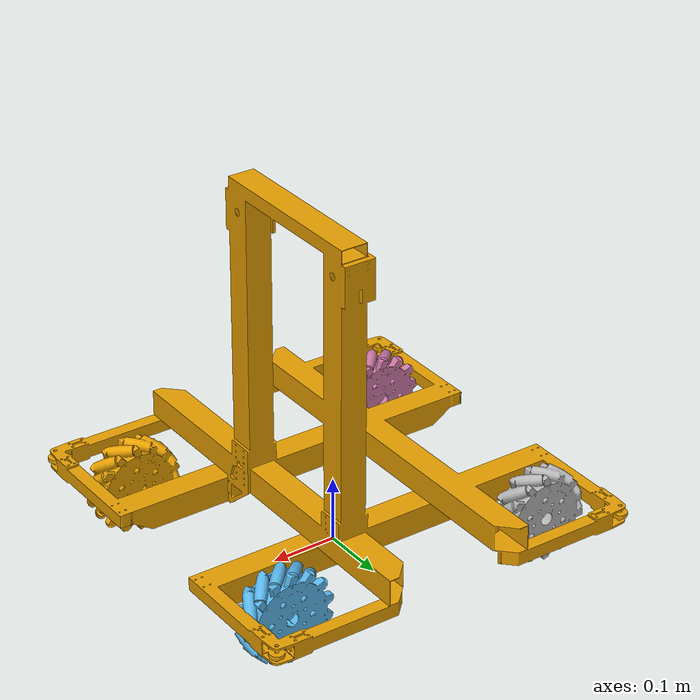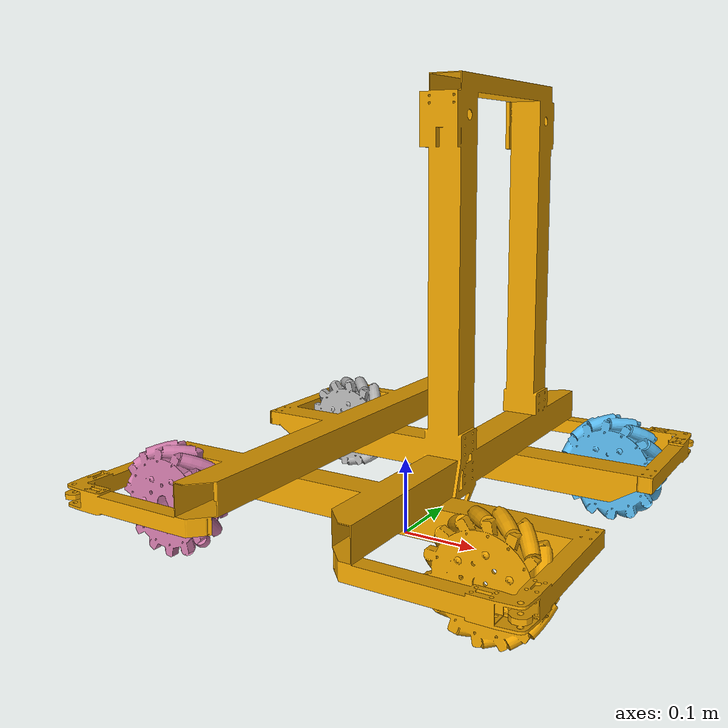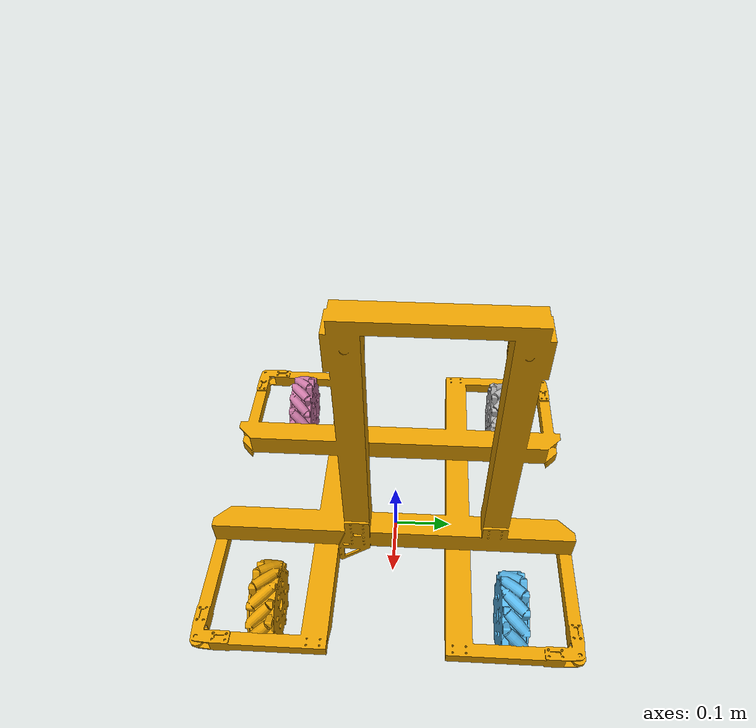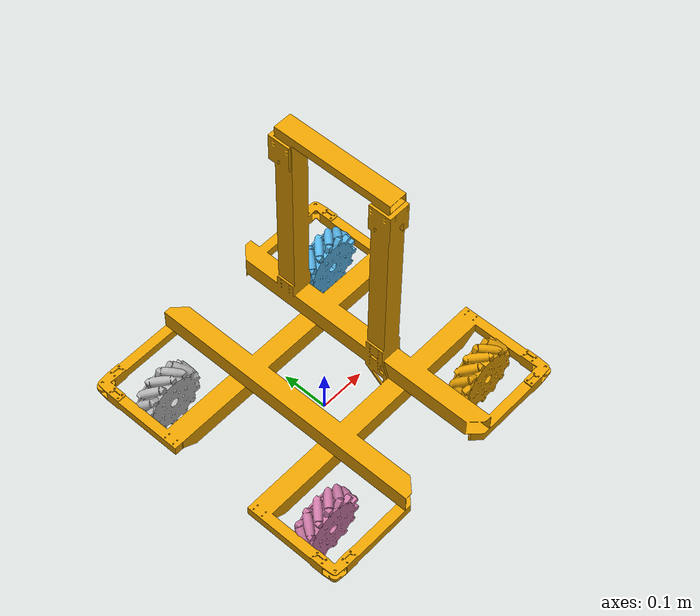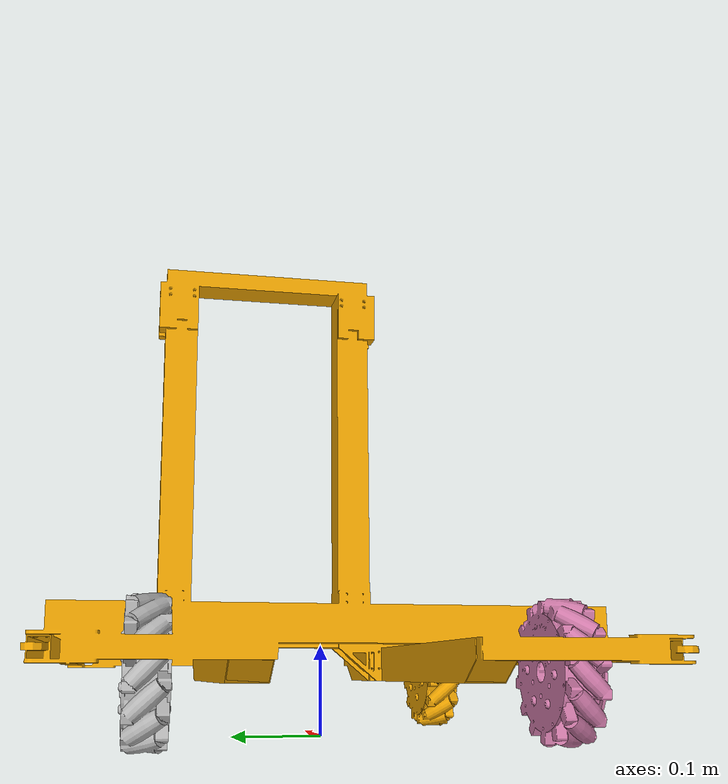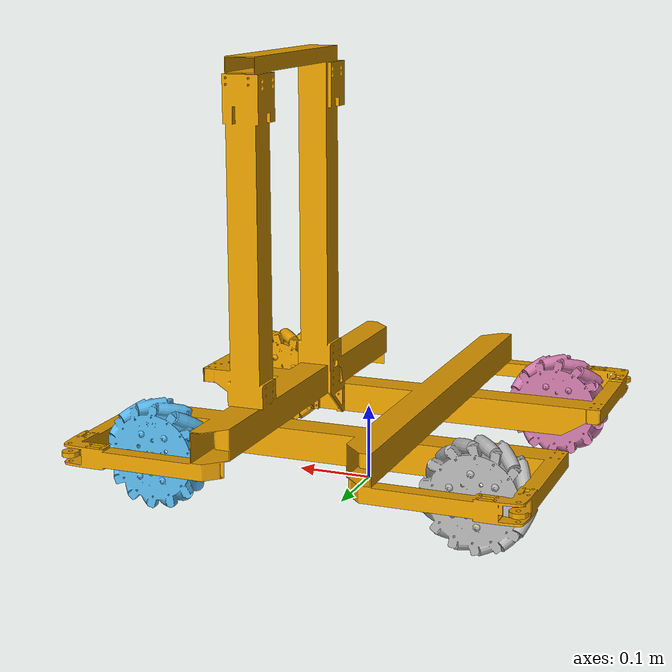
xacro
<?xml version="1.0"?>
<robot xmlns:xacro="http://www.ros.org/wiki/xacro" name="engineer2">
    <xacro:arg name="load_chassis" default="true"/>
    <xacro:arg name="load_arm" default="false"/>
    <xacro:arg name="use_simulation" default="false"/>
    <xacro:arg name="camera_link" default="camera_link"/>
    <xacro:arg name="camera_optical_frame" default="camera_optical_frame"/>
    <xacro:arg name="roller_type" default="realistic"/>

    <xacro:if value="$(arg load_chassis)">
        <xacro:include filename="$(find rm2_description)/urdf/engineer2/chassis.urdf.xacro"/>
        <xacro:chassis roller_type="$(arg roller_type)"/>
    </xacro:if>

    <xacro:if value="$(arg load_arm)">
        <xacro:include filename="$(find rm2_description)/urdf/engineer2/arm.urdf.xacro"/>
        <xacro:arm connected_to="base_link" use_simulation="$(arg use_simulation)"/>

        <xacro:include filename="$(find rm2_description)/urdf/engineer2/arm.transmission.xacro"/>
        <xacro:arm_transmission use_simulation="$(arg use_simulation)"/>

        <xacro:include filename="$(find rm2_description)/urdf/engineer2/gold_only.urdf.xacro"/>
        <xacro:gold_only connected_to="base_link"/>

        <xacro:include filename="$(find rm2_description)/urdf/engineer2/silver_only.urdf.xacro"/>
        <xacro:silver connected_to="base_link"/>

    </xacro:if>

    <ros2_control name="RmEcatHardwareInterface" type="system">
        <hardware>
            <plugin>rm2_ecat_ros/RmEcatHardwareInterface</plugin>
        </hardware>

        <joint name="left_front_wheel_joint">
            <command_interface name="effort"/>
            <state_interface name="position"/>
            <state_interface name="velocity"/>
            <state_interface name="effort"/>
        </joint>

        <joint name="right_front_wheel_joint">
            <command_interface name="effort"/>
            <state_interface name="position"/>
            <state_interface name="velocity"/>
            <state_interface name="effort"/>
        </joint>

        <joint name="left_back_wheel_joint">
            <command_interface name="effort"/>
            <state_interface name="position"/>
            <state_interface name="velocity"/>
            <state_interface name="effort"/>
        </joint>

        <joint name="right_back_wheel_joint">
            <command_interface name="effort"/>
            <state_interface name="position"/>
            <state_interface name="velocity"/>
            <state_interface name="effort"/>
        </joint>

        <!--Other joint wait to added-->
    </ros2_control>

</robot>

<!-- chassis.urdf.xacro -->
<robot xmlns:xacro="http://www.ros.org/wiki/xacro">

    <xacro:include filename="$(find rm2_description)/urdf/common/mecanum_wheel_14roller.urdf.xacro"/>

    <!-- https://upload.wikimedia.org/wikipedia/commons/5/52/Wheelbase_and_Track.png -->
    <xacro:property name="wheel_track" value="0.426"/>
    <xacro:property name="wheel_base" value="0.389"/>
    <xacro:property name="wheel_offset_z" value="0.07"/>

    <xacro:macro name="chassis" params="roller_type">

        <link name="base_link">
            <inertial>
                <mass value="15.736541"/>
                <origin xyz="0.05048 0.003745 0.123835"/>
                <inertia ixx="6.818e-1" ixy="-5.361e-3" ixz="-2.802e-2" iyy="6.637e-1"
                         iyz="-1.676e-2" izz="9.575e-1"/>
            </inertial>
            <visual>
                <origin xyz="0 0 0" rpy="0 0 0"/>
                <geometry>
                    <mesh filename="package://rm2_description/meshes/engineer2/base_link.stl"/>
                </geometry>
            </visual>
            <collision>
                <origin xyz="0 0 0" rpy="0 0 0"/>
                <geometry>
                    <mesh filename="package://rm2_description/meshes/engineer2/base_link.stl"/>
                </geometry>
            </collision>
        </link>

        <xacro:mecanum_wheel_14roller prefix="left_front" connected_to="base_link"
                             wheel_x_offset="${wheel_track/2}" wheel_y_offset="${wheel_base/2}"
                             wheel_z_offset="${wheel_offset_z}"
                             reflect="1" roller_type="${roller_type}"
                             max_effort="4" max_velocity="50"/>
        <xacro:mecanum_wheel_14roller prefix="right_front" connected_to="base_link"
                             wheel_x_offset="${wheel_track/2}" wheel_y_offset="${-wheel_base/2}"
                             wheel_z_offset="${wheel_offset_z}"
                             reflect="-1" roller_type="${roller_type}"
                             max_effort="4" max_velocity="50"/>
        <xacro:mecanum_wheel_14roller prefix="left_back" connected_to="base_link"
                             wheel_x_offset="${-wheel_track/2}" wheel_y_offset="${wheel_base/2}"
                             wheel_z_offset="${wheel_offset_z}"
                             reflect="-1" roller_type="${roller_type}"
                             max_effort="4" max_velocity="50"/>
        <xacro:mecanum_wheel_14roller prefix="right_back" connected_to="base_link"
                             wheel_x_offset="${-wheel_track/2}" wheel_y_offset="${-wheel_base/2}"
                             wheel_z_offset="${wheel_offset_z}"
                             reflect="1" roller_type="${roller_type}"
                             max_effort="4" max_velocity="50"/>
        <xacro:wheel_transmission prefix="left_front" mechanical_reduction="19.2032"/>
        <xacro:wheel_transmission prefix="right_front" mechanical_reduction="-19.2032"/>
        <xacro:wheel_transmission prefix="left_back" mechanical_reduction="19.2032"/>
        <xacro:wheel_transmission prefix="right_back" mechanical_reduction="-19.2032"/>

    </xacro:macro>

</robot>

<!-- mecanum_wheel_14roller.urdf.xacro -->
<robot xmlns:xacro="http://www.ros.org/wiki/xacro" name="mecanum_wheel_14roller">

    <xacro:property name="wheel_radius" value="0.07"/>
    <xacro:property name="roller_radius" value="0.009"/>

    <xacro:macro name="roller" params="prefix suffix theta roller_type">
        <!-- rotation math: roller_joint_axis -->
        <xacro:property name="sqrt_2_2" value="${sqrt(2)/2}"/>
        <xacro:property name="roller_joint_axis_x" value="${cos(theta) * sqrt_2_2}"/>
        <xacro:property name="roller_joint_axis_y" value="${-reflect * sqrt_2_2}"/>
        <xacro:property name="roller_joint_axis_z" value="${sin(theta) * sqrt_2_2}"/>
        <!-- rotation math: get quaternion between x_axis (1,0,0) and roller_joint_axis
        https://stackoverflow.com/questions/1171849/finding-quaternion-representing-the-rotation-from-one-vector-to-another -->
        <xacro:property name="quat_x" value="${0}"/>
        <xacro:property name="quat_y" value="${roller_joint_axis_z}"/>
        <xacro:property name="quat_z" value="${-roller_joint_axis_y}"/>
        <xacro:property name="quat_w" value="${-(1+roller_joint_axis_x)}"/>
        <xacro:property name="quat_length" value="${sqrt(quat_y*quat_y + quat_z * quat_z+quat_w * quat_w)}"/>
        <xacro:property name="quat_normal_x" value="${0}"/>
        <xacro:property name="quat_normal_y" value="${quat_y/quat_length}"/>
        <xacro:property name="quat_normal_z" value="${quat_z/quat_length}"/>
        <xacro:property name="quat_normal_w" value="${quat_w/quat_length}"/>

        <!--  link  -->
        <link name="${prefix}_roller_${suffix}">
            <collision>
                <xacro:if value="${roller_type=='realistic'}">
                    <!--  quat_xyzw dosen't work ?! covert to rpy-->
                    <origin rpy="${atan2(2. * (quat_normal_w * quat_normal_x + quat_normal_y * quat_normal_z),
                              1. - 2. * (quat_normal_x * quat_normal_x + quat_normal_y * quat_normal_y))}
                     ${asin(2. * (quat_normal_w * quat_normal_y - quat_normal_z * quat_normal_x))}
                     ${atan2(2. * (quat_normal_w * quat_normal_z + quat_normal_x * quat_normal_y),
                              1. - 2. * (quat_normal_y * quat_normal_y + quat_normal_z * quat_normal_z))}"
                            xyz="0 0 0"/>
                    <geometry>
                        <mesh filename="package://rm2_description/meshes/common/roller.stl" scale="0.001 0.001 0.001"/>
                    </geometry>
                </xacro:if>
                <xacro:if value="${roller_type=='simple'}">
                    <geometry>
                        <sphere radius="${roller_radius}"/>
                    </geometry>
                </xacro:if>
            </collision>
            <inertial>
                <mass value="0.036"/>
                <inertia ixx="3128e-9" ixy="0.0" ixz="0.0" iyy="3128e-9" iyz="0.0" izz="3128e-9"/>
            </inertial>
        </link>

        <joint name="${prefix}_roller_${suffix}_joint" type="continuous">
            <origin
                    xyz="${(wheel_radius-roller_radius)*cos(theta-pi/2)} 0 ${(wheel_radius-roller_radius)*sin(theta-pi/2)}"
                    rpy="0 0 0"/>
            <axis xyz="${roller_joint_axis_x} ${roller_joint_axis_y} ${roller_joint_axis_z}"/>
            <dynamics damping="0.0" friction="0.001"/>
            <parent link="${prefix}_wheel"/>
            <child link="${prefix}_roller_${suffix}"/>
        </joint>

        <gazebo reference="${prefix}_roller_${suffix}">
            <mu1 value="2000.0"/>
            <mu2 value="2000.0"/>
            <kp value="1000000.0"/>
            <kd value="100.0"/>
            <material>Gazebo/Black</material>
        </gazebo>

    </xacro:macro>

    <xacro:macro name="mecanum_wheel_14roller"
                 params="prefix connected_to wheel_x_offset wheel_y_offset wheel_z_offset reflect roller_type max_effort max_velocity">
        <!--  link  -->
        <link name="${prefix}_wheel">
            <visual>
                <geometry>
                    <xacro:if value="${reflect == 1}">
                        <mesh filename="package://rm2_description/meshes/common/right_threaded_14roller_mecanum_wheel.stl"/>
                    </xacro:if>
                    <xacro:if value="${reflect == -1}">
                        <mesh filename="package://rm2_description/meshes/common/left_threaded_14roller_mecanum_wheel.stl"/>
                    </xacro:if>
                </geometry>
            </visual>
            <inertial>
                <mass value="1.613177"/>
                <inertia ixx="1.416e-3" ixy="0.0" ixz="0.0" iyy="2.749e-3" iyz="0.0" izz="1.416e-3"/>
            </inertial>
        </link>

        <!--  joint  -->
        <joint name="${prefix}_wheel_joint" type="revolute">
            <axis xyz="0 1 0"/>
            <origin xyz="${wheel_x_offset} ${wheel_y_offset} ${wheel_offset_z}" rpy="0 0 0"/>
            <!--      limit not work while type="continuous"-->
            <limit effort="${max_effort}" velocity="${max_velocity}" lower="-1e9" upper="1e9"/>
            <dynamics damping="0.0" friction="0.05"/>
            <parent link="${connected_to}"/>
            <child link="${prefix}_wheel"/>
        </joint>

        <xacro:unless value="${roller_type=='none'}">
            <!-- 14 roller  2pi/14=0.449-->
            <xacro:roller prefix="${prefix}" suffix="0" theta="${0*0.449}" roller_type="${roller_type}"/>
            <xacro:roller prefix="${prefix}" suffix="1" theta="${1*0.449}" roller_type="${roller_type}"/>
            <xacro:roller prefix="${prefix}" suffix="2" theta="${2*0.449}" roller_type="${roller_type}"/>
            <xacro:roller prefix="${prefix}" suffix="3" theta="${3*0.449}" roller_type="${roller_type}"/>
            <xacro:roller prefix="${prefix}" suffix="4" theta="${4*0.449}" roller_type="${roller_type}"/>
            <xacro:roller prefix="${prefix}" suffix="5" theta="${5*0.449}" roller_type="${roller_type}"/>
            <xacro:roller prefix="${prefix}" suffix="6" theta="${6*0.449}" roller_type="${roller_type}"/>
            <xacro:roller prefix="${prefix}" suffix="7" theta="${7*0.449}" roller_type="${roller_type}"/>
            <xacro:roller prefix="${prefix}" suffix="8" theta="${8*0.449}" roller_type="${roller_type}"/>
            <xacro:roller prefix="${prefix}" suffix="9" theta="${9*0.449}" roller_type="${roller_type}"/>
            <xacro:roller prefix="${prefix}" suffix="10" theta="${10*0.449}" roller_type="${roller_type}"/>
            <xacro:roller prefix="${prefix}" suffix="11" theta="${11*0.449}" roller_type="${roller_type}"/>
            <xacro:roller prefix="${prefix}" suffix="12" theta="${12*0.449}" roller_type="${roller_type}"/>
            <xacro:roller prefix="${prefix}" suffix="13" theta="${13*0.449}" roller_type="${roller_type}"/>
        </xacro:unless>

    </xacro:macro>

    <xacro:macro name="wheel_transmission" params="prefix mechanical_reduction">
        <transmission name="${prefix}_wheel_trans">
            <type>transmission_interface/SimpleTransmission</type>
            <plugin>transmission_interface/SimpleTransmission</plugin>
            <joint name="${prefix}_wheel_joint" role="actuated">
                <mechanical_reduction>${mechanical_reduction}</mechanical_reduction>
                <offset>0.0</offset>
            </joint>
            <actuator name="${prefix}_wheel_motor" role="actuated">
                <mechanical_reduction>${mechanical_reduction}</mechanical_reduction>
            </actuator>
        </transmission>
    </xacro:macro>

</robot>
